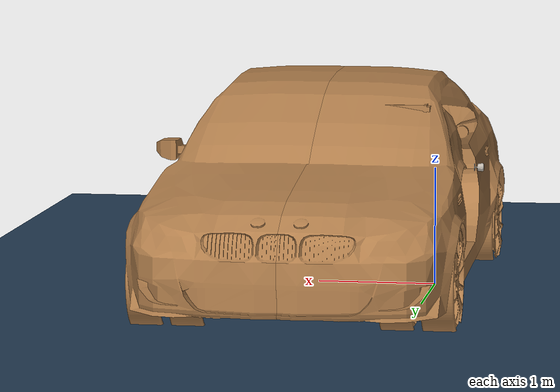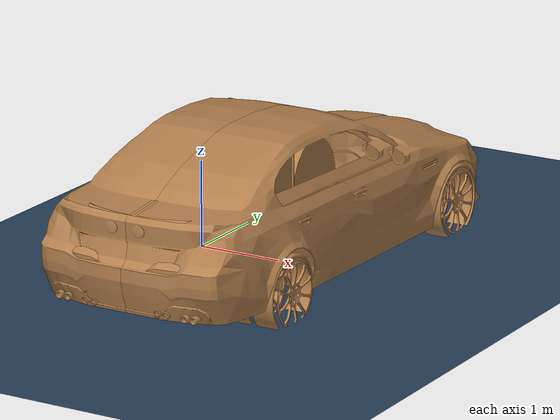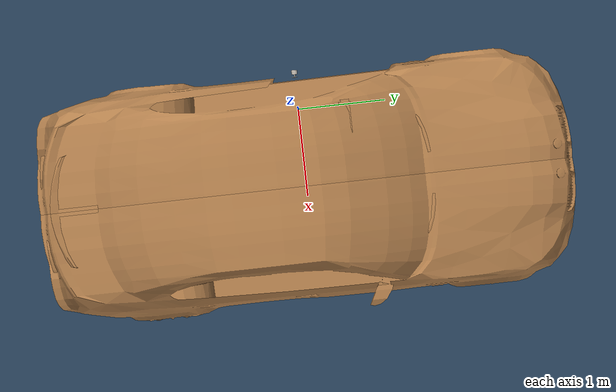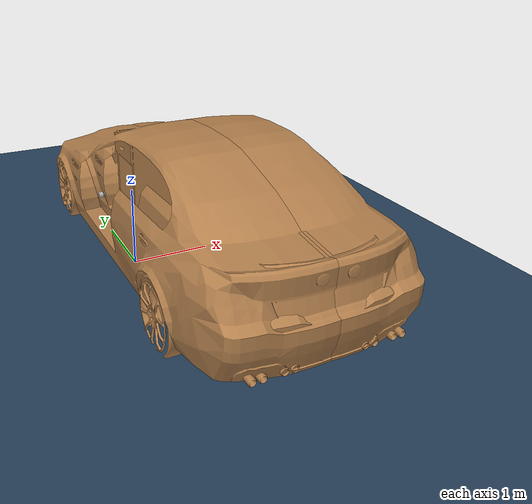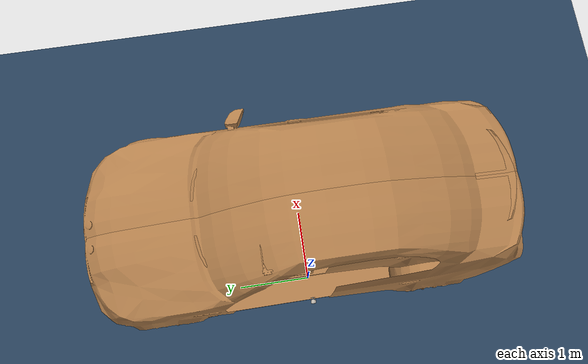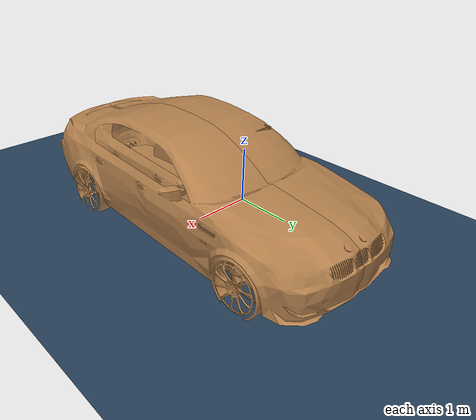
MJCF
<mujoco model="right-pull-door">
  <compiler angle="radian" meshdir="texture_stl/"/>

  <visual>
    <headlight diffuse="0.6 0.6 0.6" ambient="0.3 0.3 0.3" specular="0 0 0"/>
    <rgba haze="0.15 0.25 0.35 1"/>
    <global azimuth="-20" elevation="-20" ellipsoidinertia="true"/>
  </visual>

  <asset>
    <texture type="skybox" builtin="gradient" rgb1="0.3 0.5 0.7" rgb2="0 0 0" width="512" height="3072"/>
    <texture type="2d" name="groundplane" builtin="checker" mark="edge" rgb1="0.2 0.3 0.4" rgb2="0.1 0.2 0.3"
      markrgb="0.8 0.8 0.8" width="300" height="300"/>
    <texture name="wood" type="cube" file="texture_stl/texture_0.png"/>
    <texture name="knob" type="2d" file="texture_stl/texture_3.png"/>
    <material name="wood_material" texture="wood"/>
    <material name="knob_material" texture="knob"/>
    <material name="groundplane" texture="groundplane" texuniform="true" texrepeat="5 5" reflectance="0.2"/>

    <mesh name="frame" file="frame.stl" scale="0.8 0.8 0.8"/>
    <mesh name="board" file="board.stl" scale="0.8 0.8 0.8"/>
    <mesh name="9962004" file="9962004.stl" scale="1.45964 1.45964 1.45964"/>
  </asset>

  <worldbody>
    <light pos="0 0 1.5" dir="0 0 -1" directional="true"/>
    <geom name="floor" size="0 0 0.05" type="plane" material="groundplane"/>
    <body name="cabinet" euler="0 1.57 0" pos="0 0 1">
    <joint type="free"/>
    <geom name="out-frame" pos="0 0 0" quat="0.5 0.5 -0.5 -0.5" type="mesh" contype="0" conaffinity="0" group="1" density="0" mesh="frame" material="wood_material"/>
    <geom pos="0 0 0" quat="0.5 0.5 -0.5 -0.5" type="mesh" mesh="frame" material="wood_material"/>
        <body name="link_1" pos="0 0.562529 0" quat="0.5 0.5 -0.5 -0.5">
        <joint name="joint_1" pos="0 0 0" axis="0 0 -1" range="0 1.50796"/>
        <geom name="surf-board" pos="0.562529 0 0" quat="1 0 0 0" type="mesh" contype="0" conaffinity="0" group="1" density="0" mesh="board" material="wood_material"/>
        <geom pos="0.562529 -0.334649 0" quat="1 0 0 0" type="mesh" mesh="board" material="wood_material"/>
            <body name="link_2" pos="0.562529 -0.334649 0.0133813">
            <joint name="joint_2" pos="0 0 0" axis="0 1 0" range="0 1.50796"/>
            <geom name="handle" type="mesh" contype="0" conaffinity="0" group="1" density="0" mesh="9962004" material="knob_material"/>
            <geom type="mesh" mesh="9962004" material="knob_material"/>
            </body>
        </body>
    </body>
  </worldbody>
</mujoco>
